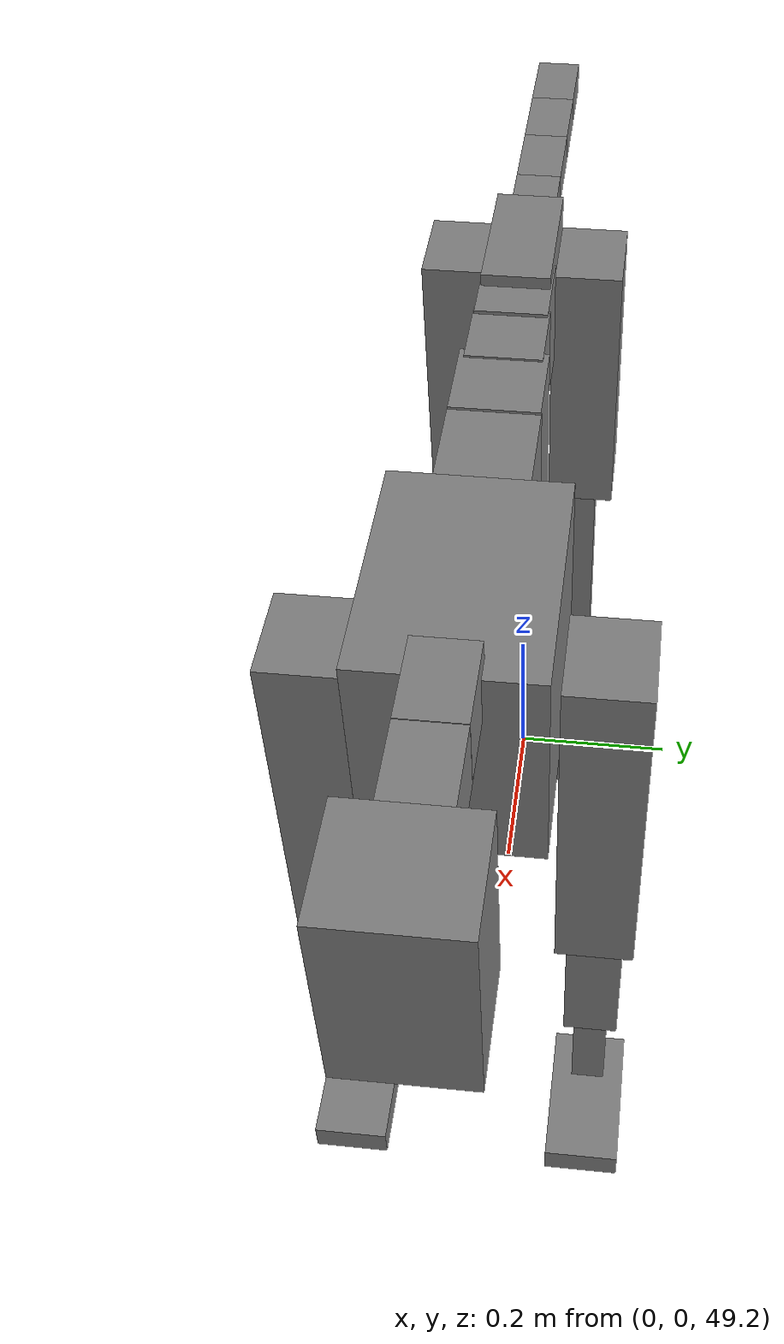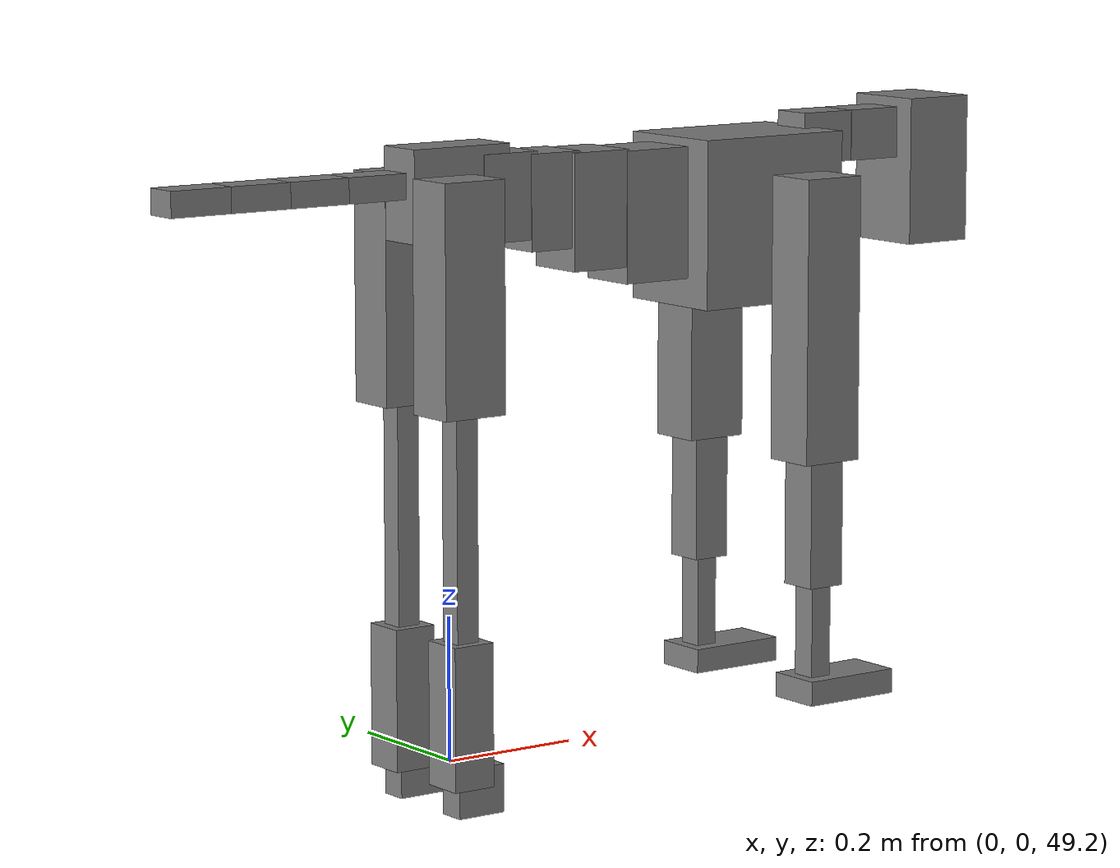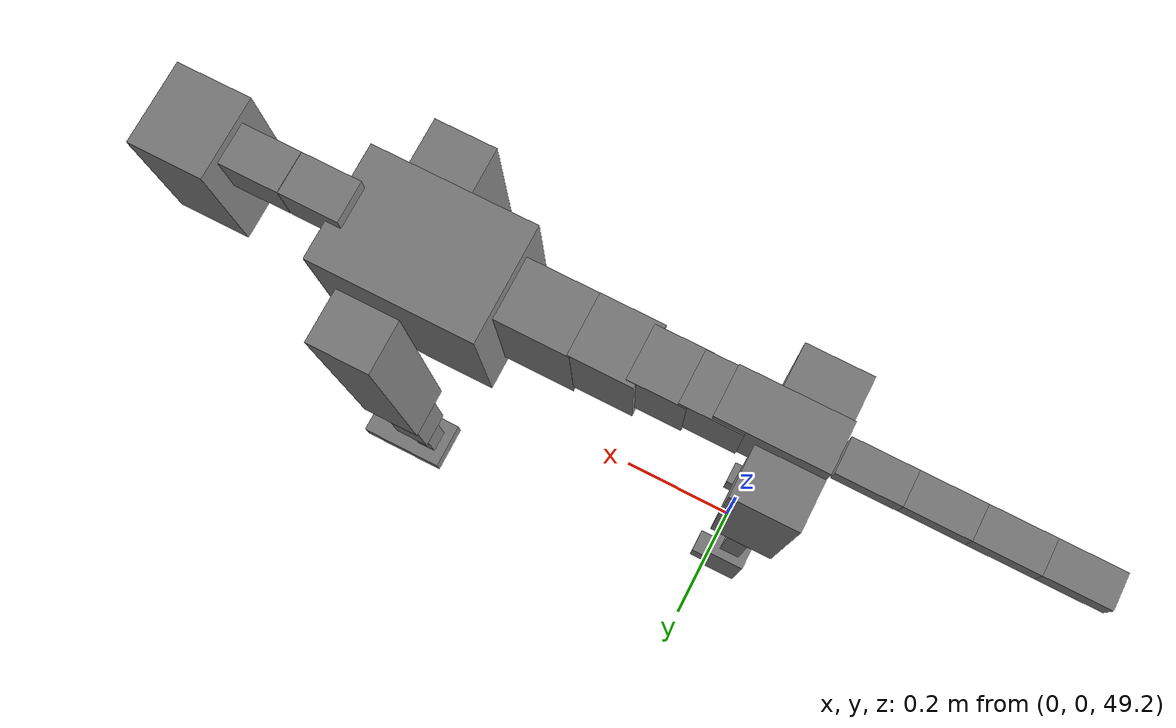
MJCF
<mujoco model="dog">

    <default>
        <joint armature="0.02" stiffness="1" damping="0.2" limited="true"/>
        <geom condim="3" friction="1 0.05 0.05" margin="0.01"/>
        <motor ctrllimited="true" ctrlrange="-1.0 1.0" forcelimited="true" gear="50"/>
    </default>

    <compiler inertiafromgeom="true" angle="radian"/>

    <option timestep="0.016" iterations="50" tolerance="1e-10" solver="Newton" jacobian="dense" cone="pyramidal"/>

    <size nconmax="20000" njmax="60000" nstack="5000000"/>
    <visual>
        <map force="0.1" zfar="30"/>
        <rgba haze="0.15 0.25 0.35 1"/>
        <quality shadowsize="2048"/>
        <global offwidth="800" offheight="800"/>
    </visual>

    <asset>
        <texture type="skybox" builtin="gradient" rgb1="0.3 0.5 0.7" rgb2="0 0 0" width="512" height="512"/>
        <texture name="texplane" type="2d" builtin="checker" rgb1=".2 .3 .4" rgb2=".1 0.15 0.2" width="512" height="512"
                 mark="cross" markrgb=".8 .8 .8"/>
        <texture name="texgeom" type="cube" builtin="flat" mark="cross" width="127" height="1278" rgb1="0.8 0.6 0.4"
                 rgb2="0.8 0.6 0.4" markrgb="1 1 1" random="0.01"/>

        <material name="matplane" reflectance="0.3" texture="texplane" texrepeat="1 1" texuniform="true"/>
        <material name="matgeom" texture="texgeom" texuniform="true" rgba="0.8 0.6 .4 1"/>
    </asset>

    <worldbody>
        <geom name="floor" pos="0 0 0" size="0 0 .25" type="plane" material="matplane" condim="3"/>

        <light directional="false" diffuse=".2 .2 .2" specular="0 0 0" pos="0 0 5" dir="0 0 -1" castshadow="false"/>
        <light mode="targetbodycom" target="torso" directional="false" diffuse=".8 .8 .8" specular="0.3 0.3 0.3"
               pos="0 0 4.0" dir="0 0 -1"/>

        <body name="root" pos="0 0 50">
            <freejoint name="root_1"/>
            <geom type="box" pos="0 0 -0.02" size="0.0774  0.0358  0.063" density="2030"/>

            <body name="spine1" pos="0.054 0 0">
                <joint name="spine1_y" axis="0 1 0" range="0 0.7" limited="true"/>
                <geom type="box" pos="0.02375 0 -0.03" size="0.04375  0.0375  0.05985" density="2030"/>

                <body name="spine2" pos="0.0612 0 0">
                    <joint name="spine2_y" axis="0 1 0" range="-0.15 0.15" limited="true"/>
                    <geom type="box" pos="0.03555  0  -0.04" size="0.04055  0.039  0.06615" density="2030"/>

                    <body name="spine3" pos="0.0730 0 0">
                        <joint name="spine3_y" axis="0 1 0" range="-0.15 0.15" limited="true"/>
                        <geom type="box" pos="0.03555  0  -0.057" size="0.04555  0.0445  0.081" density="2030"/>

                        <body name="spine4" pos="0.0780 0 0">
                            <joint name="spine4_y" axis="0 1 0" range="-0.15 0.15" limited="true"/>
                            <geom type="box" pos="0.05265  0  -0.07" size="0.05265  0.045  0.09135" density="2030"/>

                            <body name="torso" pos="0.1082 0 0">
                                <joint name="torso_y" axis="0 1 0" range="-0.15 0.15" limited="true"/>
                                <geom type="box" pos="0.11925  0  -0.085" size="0.11925  0.085  0.11745"
                                      density="2030"/>

                                <body name="neck1" pos="0.2160  0   0.0180">
                                    <joint name="neck1_y" axis="0 1 0" range="-1.2  -1" limited="true"/>
                                    <geom type="box" pos="0.0423  0  0" size="0.0423  0.03  0.036" density="2325"/>

                                    <body name="neck2" pos="0.0853  0  0">
                                        <joint name="neck2_y" axis="0 1 0" range="0.1  0" limited="true"/>
                                        <geom type="box" pos="0.0423  0  0" size="0.0423  0.03  0.036" density="2325"/>

                                        <body name="head" pos="0.0853  0  0">
                                            <joint name="head_y" axis="0 1 0" range="-0.3  -0.2" limited="true"/>
                                            <geom type="box" pos="0.0531  0  -0.055" size="0.0531  0.06  0.1044"
                                                  density="4030"/>

                                        </body>
                                    </body>
                                </body>

                                <body name="front_shoulder" pos="0.156  0   -0.0480">
                                    <joint name="front_shoulder_y" axis="0 1 0" range="-1 1.5" limited="true"/>
                                    <geom type="box" pos="0 0.13 -0.1722" size="0.0462  0.0395  0.1989" density="1158"/>
                                    <geom type="box" pos="0 -0.13 -0.1722" size="0.0462  0.0395  0.1989"
                                          density="1158"/>

                                    <body name="front_elbow" pos="0  0  -0.3444">
                                        <joint name="front_elbow_y" axis="0 1 0" range="-2 0" limited="true"/>
                                        <geom type="box" pos="0 0.13 -0.1023" size="0.0281  0.0287  0.1023"
                                              density="1081"/>
                                        <geom type="box" pos="0 -0.13 -0.1023" size="0.0281  0.0287  0.1023"
                                              density="1081"/>

                                        <body name="front_wrist" pos="0  0  -0.2045">
                                            <joint name="front_wrist_y" axis="0 1 0" range="-0.2 0" limited="true"/>
                                            <geom type="box" pos="0 0.13 -0.0725" size="0.0163  0.0181  0.0856"
                                                  density="1664"/>
                                            <geom type="box" pos="0 -0.13 -0.0725" size="0.0163  0.0181  0.0856"
                                                  density="1664"/>

                                            <body name="front_finger_end" pos="0  0  -0.1449">
                                                <joint name="front_finger_y" axis="0 1 0" range="-0.4 1"
                                                       limited="true"/>
                                                <geom type="box" pos="0.0399  0.13  -0.0024"
                                                      size="0.0732  0.0399  0.0174" density="1515"/>
                                                <geom type="box" pos="0.0399  -0.13  -0.0024"
                                                      size="0.0732  0.0399  0.0174" density="1515"/>

                                            </body>

                                        </body>
                                    </body>
                                </body>

                            </body>
                        </body>
                    </body>
                </body>
            </body>

            <body name="back_hip" pos="-0.03 0 -0.018">
                <joint name="back_hip_y" axis="0 1 0" range="-1.5 0.3" limited="true"/>
                <geom type="box" pos="0 0.07 -0.1346" size="0.0479  0.0376  0.1574" density="1154"/>
                <geom type="box" pos="0 -0.07 -0.1346" size="0.0479  0.0376  0.1574" density="1154"/>

                <body name="back_knee" pos="0  0  -0.2692">
                    <joint name="back_knee_y" axis="0 1 0" range="0 2.8" limited="true"/>
                    <geom type="box" pos="0 0.07 -0.1707" size="0.0170  0.0168  0.1863" density="1227"/>
                    <geom type="box" pos="0 -0.07 -0.1707" size="0.0170  0.0168  0.1863" density="1227"/>

                    <body name="back_ankle" pos="0  0  -0.3414">
                        <joint name="back_ankle_y" axis="0 1 0" range="-2.2 0" limited="true"/>
                        <geom type="box" pos="0 0.07 -0.0880" size="0.0312  0.0312  0.0992" density="1284"/>
                        <geom type="box" pos="0 -0.07 -0.0880" size="0.0312  0.0312  0.0992" density="1284"/>

                        <body name="back_toe_end" pos="0  0  -0.1759">
                            <joint name="back_toe_y" axis="0 1 0" range="-0.4 1" limited="true"/>
                            <geom type="box" pos="0.0198  0.07  -0.0186" size="0.0364  0.0198  0.0336" density="1515"/>
                            <geom type="box" pos="0.0198  -0.07  -0.0186" size="0.0364  0.0198  0.0336" density="1515"/>

                        </body>
                    </body>
                </body>
            </body>

            <body name="tail1" pos="-0.074 0 -0.006">
                <joint name="tail1_y" axis="0 1 0" range="-0.2 0.2" limited="true"/>
                <geom type="box" pos="-0.0536  0  0" size="0.045  0.025  0.0175" density="1587"/>

                <body name="tail2" pos="-0.09 0 0">
                    <joint name="tail2_y" axis="0 1 0" range="-0.2 0.2" limited="true"/>
                    <geom type="box" pos="-0.0536  0  0" size="0.045  0.025  0.0175" density="1587"/>

                    <body name="tail3" pos="-0.09 0 0">
                        <joint name="tail3_y" axis="0 1 0" range="-0.2 0.2" limited="true"/>
                        <geom type="box" pos="-0.0536  0  0" size="0.045  0.025  0.0175" density="1587"/>

                        <body name="tail4" pos="-0.09 0 0">
                            <joint name="tail4_y" axis="0 1 0" range="-0.2 0.2" limited="true"/>
                            <geom type="box" pos="-0.0536  0  0" size="0.045  0.025  0.0175" density="1587"/>

                        </body>
                    </body>
                </body>
            </body>
        </body>
    </worldbody>

    <actuator>
        <motor joint="spine1_y" forcerange="-150 150     "/>
        <motor joint="spine2_y" forcerange="-150 150     "/>
        <motor joint="spine3_y" forcerange="-150 150     "/>
        <motor joint="spine4_y" forcerange="-150 150     "/>
        <motor joint="torso_y" forcerange="-150 150     "/>
        <motor joint="neck1_y" forcerange="-100 100       "/>
        <motor joint="neck2_y" forcerange="-100 100       "/>
        <motor joint="head_y" forcerange="-150 150       "/>
        <motor joint="front_shoulder_y" forcerange="-174.96 188.44"/>
        <motor joint="front_elbow_y" forcerange="-182.58 125.98"/>
        <motor joint="front_wrist_y" forcerange="-66.53 78.49"/>
        <motor joint="front_finger_y" forcerange="-96.34 76.56"/>
        <motor joint="back_hip_y" forcerange="-305.96 395.45"/>
        <motor joint="back_knee_y" forcerange="-216.87 226.99"/>
        <motor joint="back_angle_y" forcerange="-206.76 192.22"/>
        <motor joint="back_toe_y" forcerange="-46.16 32.49"/>
        <motor joint="tail1_y" forcerange="-50 50     "/>
        <motor joint="tail2_y" forcerange="-50 50     "/>
        <motor joint="tail3_y" forcerange="-50 50     "/>
        <motor joint="tail4_y" forcerange="-50 50     "/>
    </actuator>
</mujoco>
